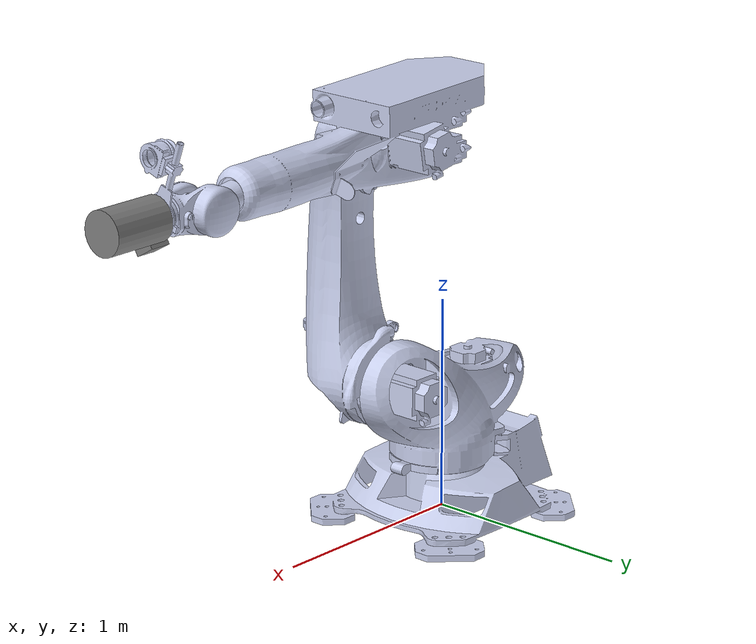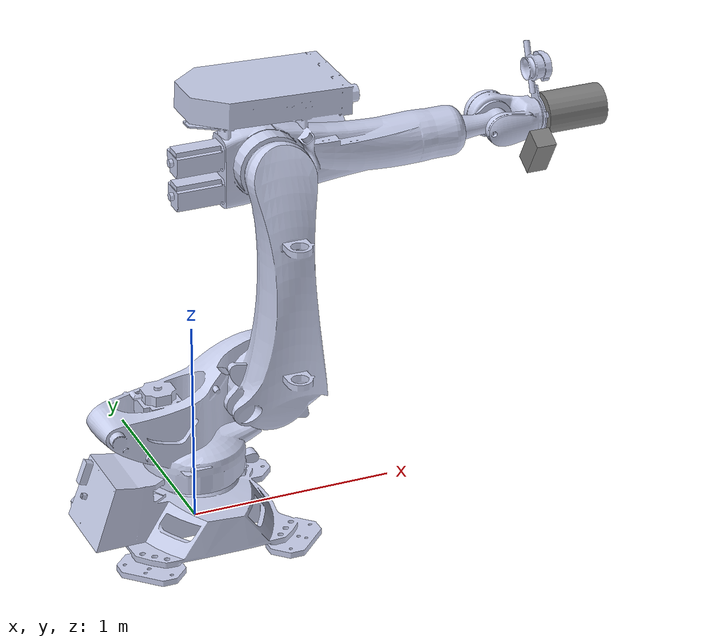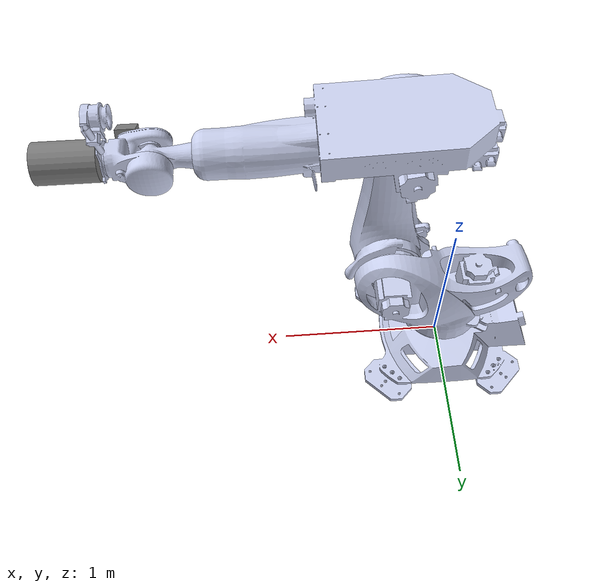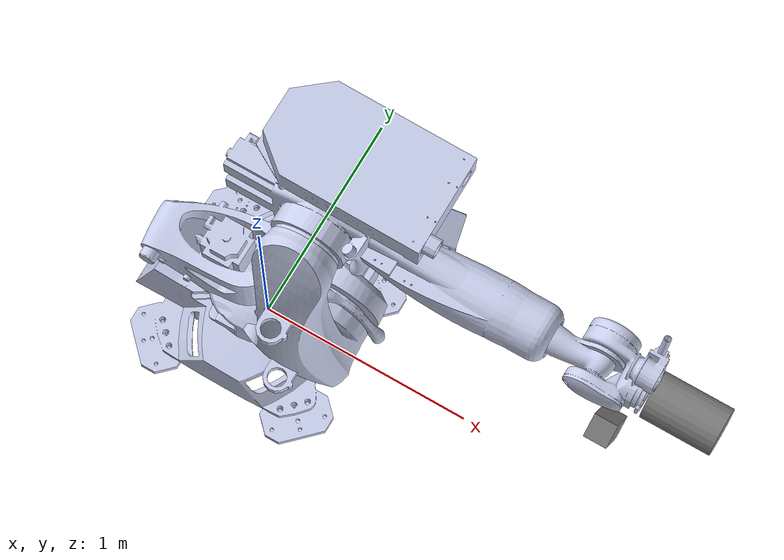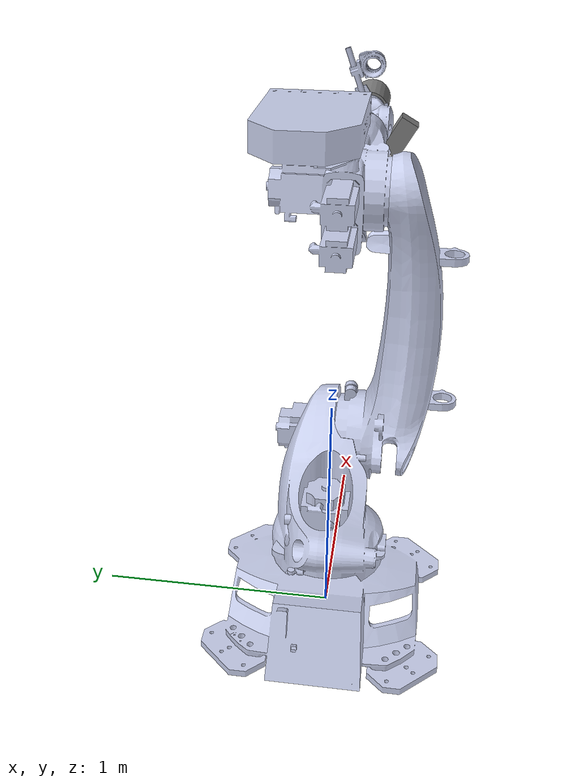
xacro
<?xml version="1.0"?>
<robot xmlns:xacro="http://www.ros.org/wiki/xacro" name="KR210_R2700_extra">
    <xacro:arg name="initial_positions_file" default="initial_positions.yaml" />

    <!-- Import KR210_R2700_extra urdf file -->
    <xacro:include filename="$(find display_kuka_kr210_rviz)/urdf/KR210_R2700_extra_modified.SLDASM.urdf" />

    <!-- Import control_xacro -->
    <xacro:include filename="KR210_R2700_extra.ros2_control.xacro" />

    <xacro:KR210_R2700_extra_ros2_control name="FakeSystem" initial_positions_file="$(arg initial_positions_file)"/>

</robot>

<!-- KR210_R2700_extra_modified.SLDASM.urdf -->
<robot name="KR210_R2700_extra">

  <link name="kuka_footprint"/>

  <!-- 固定虚拟关节连接 footprint 到 base_link -->
  <joint name="virtual_joint" type="fixed">
    <parent link="kuka_footprint"/>
    <child link="kr210_base_link"/>
    <origin xyz="0 0 0" rpy="-1.5708 0 0"/>
  </joint>

  <link
    name="kr210_base_link">
    <inertial>
      <origin
        xyz="-0.12329 0.00029575 0.11391"
        rpy="0 0 0" />
      <mass
        value="88.289" />
      <inertia
        ixx="3.3711"
        ixy="0.0097149"
        ixz="0.52176"
        iyy="6.1214"
        iyz="-0.0046973"
        izz="8.3283" />
    </inertial>
    <visual>
      <origin
        xyz="0 0 0"
        rpy="0 0 0" />
      <geometry>
        <mesh
          filename="package://display_kuka_kr210_rviz/meshes/kr210_base_link.STL" />
      </geometry>
      <material
        name="">
        <color
          rgba="0.79216 0.81961 0.93333 1" />
      </material>
    </visual>
    <collision>
      <origin
        xyz="0 0 0"
        rpy="0 0 0" />
      <geometry>
        <mesh
          filename="package://display_kuka_kr210_rviz/meshes/kr210_base_link.STL" />
      </geometry>
    </collision>
  </link>
  <link
    name="kr210_link1">
    <inertial>
      <origin
        xyz="0.00419091496574721 0.0191853086394971 0.269190520123386"
        rpy="0 0 0" />
      <mass
        value="88.8722060869493" />
      <inertia
        ixx="3.18724848948384"
        ixy="-0.633517464496378"
        ixz="-0.511333889351166"
        iyy="6.33845721966804"
        iyz="-0.261168069619429"
        izz="5.2880946733646" />
    </inertial>
    <visual>
      <origin
        xyz="0 0 0"
        rpy="0 0 0" />
      <geometry>
        <mesh
          filename="package://display_kuka_kr210_rviz/meshes/kr210_link1.STL" />
      </geometry>
      <material
        name="">
        <color
          rgba="0.792156862745098 0.819607843137255 0.933333333333333 1" />
      </material>
    </visual>
    <collision>
      <origin
        xyz="0 0 0"
        rpy="0 0 0" />
      <geometry>
        <mesh
          filename="package://display_kuka_kr210_rviz/meshes/kr210_link1.STL" />
      </geometry>
    </collision>
  </link>
  <joint
    name="joint1"
    type="revolute">
    <origin
      xyz="0 -0.2156 0"
      rpy="1.5708 0 0" />
    <parent
      link="kr210_base_link" />
    <child
      link="kr210_link1" />
    <axis
      xyz="0 0 -1" />
    <limit
      lower="-3.14"
      upper="3.14"
      effort="100"
      velocity="1" />
  </joint>
  <link
    name="kr210_link2">
    <inertial>
      <origin
        xyz="0.0027978 -0.23683 0.43208"
        rpy="0 0 0" />
      <mass
        value="96.547" />
      <inertia
        ixx="16.136"
        ixy="-0.0056688"
        ixz="-0.014745"
        iyy="15.899"
        iyz="1.7698"
        izz="1.7843" />
    </inertial>
    <visual>
      <origin
        xyz="0 0 0"
        rpy="0 0 0" />
      <geometry>
        <mesh
          filename="package://display_kuka_kr210_rviz/meshes/kr210_link2.STL" />
      </geometry>
      <material
        name="">
        <color
          rgba="0.79216 0.81961 0.93333 1" />
      </material>
    </visual>
    <collision>
      <origin
        xyz="0 0 0"
        rpy="0 0 0" />
      <geometry>
        <mesh
          filename="package://display_kuka_kr210_rviz/meshes/kr210_link2.STL" />
      </geometry>
    </collision>
  </link>
  <joint
    name="joint2"
    type="revolute">
    <origin
      xyz="0.35 0 0.4594"
      rpy="0 0 0" />
    <parent
      link="kr210_link1" />
    <child
      link="kr210_link2" />
    <axis
      xyz="0 -1 0" />
    <limit
      lower="-3.14"
      upper="3.14"
      effort="100"
      velocity="1" />
  </joint>
  <link
    name="kr210_link3">
    <inertial>
      <origin
        xyz="0.18165 0.054243 0.066543"
        rpy="0 0 0" />
      <mass
        value="119.14" />
      <inertia
        ixx="4.3385"
        ixy="0.79293"
        ixz="1.4621"
        iyy="15.461"
        iyz="-1.1248"
        izz="14.851" />
    </inertial>
    <visual>
      <origin
        xyz="0 0 0"
        rpy="0 0 0" />
      <geometry>
        <mesh
          filename="package://display_kuka_kr210_rviz/meshes/kr210_link3.STL" />
      </geometry>
      <material
        name="">
        <color
          rgba="0.79216 0.81961 0.93333 1" />
      </material>
    </visual>
    <collision>
      <origin
        xyz="0 0 0"
        rpy="0 0 0" />
      <geometry>
        <mesh
          filename="package://display_kuka_kr210_rviz/meshes/kr210_link3.STL" />
      </geometry>
    </collision>
  </link>
  <joint
    name="joint3"
    type="revolute">
    <origin
      xyz="0 0 1.15"
      rpy="0 0 0" />
    <parent
      link="kr210_link2" />
    <child
      link="kr210_link3" />
    <axis
      xyz="0 -1 0" />
    <limit
      lower="-3.14"
      upper="3.14"
      effort="100"
      velocity="1" />
  </joint>
  <link
    name="kr210_link4">
    <inertial>
      <origin
        xyz="0.132079953309161 0.00135411558462281 -6.25620506955471E-06"
        rpy="0 0 0" />
      <mass
        value="3.49282768845098" />
      <inertia
        ixx="0.00854408204343117"
        ixy="-0.000802619889318926"
        ixz="-1.17218435695788E-06"
        iyy="0.0373645445404462"
        iyz="-9.45475013202612E-08"
        izz="0.0368830471592641" />
    </inertial>
    <visual>
      <origin
        xyz="0 0 0"
        rpy="0 0 0" />
      <geometry>
        <mesh
          filename="package://display_kuka_kr210_rviz/meshes/kr210_link4.STL" />
      </geometry>
      <material
        name="">
        <color
          rgba="0.792156862745098 0.819607843137255 0.933333333333333 1" />
      </material>
    </visual>
    <collision>
      <origin
        xyz="0 0 0"
        rpy="0 0 0" />
      <geometry>
        <mesh
          filename="package://display_kuka_kr210_rviz/meshes/kr210_link4.STL" />
      </geometry>
    </collision>
  </link>
  <joint
    name="joint4"
    type="revolute">
    <origin
      xyz="0.9445 0 -0.041"
      rpy="0 0 0" />
    <parent
      link="kr210_link3" />
    <child
      link="kr210_link4" />
    <axis
      xyz="1 0 0" />
    <limit
      lower="-3.14"
      upper="3.14"
      effort="100"
      velocity="1" />
  </joint>
  <link
    name="kr210_link5">
    <inertial>
      <origin
        xyz="0.046703 0.024001 -5.0913E-05"
        rpy="0 0 0" />
      <mass
        value="8.4727" />
      <inertia
        ixx="0.082604"
        ixy="0.013295"
        ixz="3.8669E-05"
        iyy="0.068368"
        iyz="3.0301E-05"
        izz="0.11537" />
    </inertial>
    <visual>
      <origin
        xyz="0 0 0"
        rpy="0 0 0" />
      <geometry>
        <mesh
          filename="package://display_kuka_kr210_rviz/meshes/kr210_link5.STL" />
      </geometry>
      <material
        name="">
        <color
          rgba="0.79216 0.81961 0.93333 1" />
      </material>
    </visual>
    <collision>
      <origin
        xyz="0 0 0"
        rpy="0 0 0" />
      <geometry>
        <mesh
          filename="package://display_kuka_kr210_rviz/meshes/kr210_link5.STL" />
      </geometry>
    </collision>
  </link>
  <joint
    name="joint5"
    type="revolute">
    <origin
      xyz="0.2555 0 0"
      rpy="0 0 0" />
    <parent
      link="kr210_link4" />
    <child
      link="kr210_link5" />
    <axis
      xyz="0 1 0" />
    <limit
      lower="-3.14"
      upper="3.14"
      effort="100"
      velocity="1" />
  </joint>
  <link
    name="kr210_link6">
    <inertial>
      <origin
        xyz="0.070718 0.011372 0.15736"
        rpy="0 0 0" />
      <mass
        value="1.4067" />
      <inertia
        ixx="0.02282"
        ixy="-6.2607E-05"
        ixz="0.00010038"
        iyy="0.020338"
        iyz="-0.00066642"
        izz="0.0037701" />
    </inertial>
    <visual>
      <origin
        xyz="0 0 0"
        rpy="0 0 0" />
      <geometry>
        <mesh
          filename="package://display_kuka_kr210_rviz/meshes/kr210_link6.STL" />
      </geometry>
      <material
        name="">
        <color
          rgba="0.79216 0.81961 0.93333 1" />
      </material>
    </visual>
    <collision>
      <origin
        xyz="0 0 0"
        rpy="0 0 0" />
      <geometry>
        <mesh
          filename="package://display_kuka_kr210_rviz/meshes/kr210_link6.STL" />
      </geometry>
    </collision>
  </link>
  <joint
    name="joint6"
    type="revolute">
    <origin
      xyz="0.13171 0 0"
      rpy="0 0 0" />
    <parent
      link="kr210_link5" />
    <child
      link="kr210_link6" />
    <axis
      xyz="-1 0 0" />
    <limit
      lower="-3.14"
      upper="3.14"
      effort="100"
      velocity="1" />

  </joint>
    <link name="tool0">
    <visual>
      <origin xyz="-0.15 0 0" rpy="0 1.5708 0"/>
      <geometry>
        <cylinder radius="0.1" length="0.3"/>
      </geometry>
      <material name="gray">
        <color rgba="0.5 0.5 0.5 1"/>
      </material>
    </visual>
    <collision>
    <origin xyz="-0.15 0 0" rpy="0 1.5708 0"/>
    <geometry>
      <cylinder radius="0.1" length="0.3"/>
    </geometry>
  </collision>
  </link>

  <joint name="joint_tool0" type="fixed">
    <parent link="kr210_link6"/>
    <child link="tool0"/>
    <origin xyz="0.4 0 0" rpy="0 0 0"/>
  </joint>

<!-- Camera Mount -->
<link name="camera_position">
  <visual>
    <origin xyz="0 0 0" rpy="0 0 0"/>
    <geometry>
      <!-- 小方块，边长 0.05 m -->
      <box size="0.2 0.1 0.1"/>
    </geometry>
    <material name="gray">
      <color rgba="0.5 0.5 0.5 1"/>
    </material>
  </visual>
  <collision>
    <origin xyz="0 0 0" rpy="0 0 0"/>
    <geometry>
      <box size="0.2 0.1 0.1"/>
    </geometry>
  </collision>
</link>

<!-- 固定关节，将 camera_position 挂到 kr210_link6 上 -->
<joint name="joint_camera_position" type="fixed">
  <parent link="kr210_link6"/>
  <child link="camera_position"/>

  <origin xyz="0.0 -0.1732 -0.1" rpy="-1.5708 -1.0472 -1.5708"/>
</joint>

</robot>
